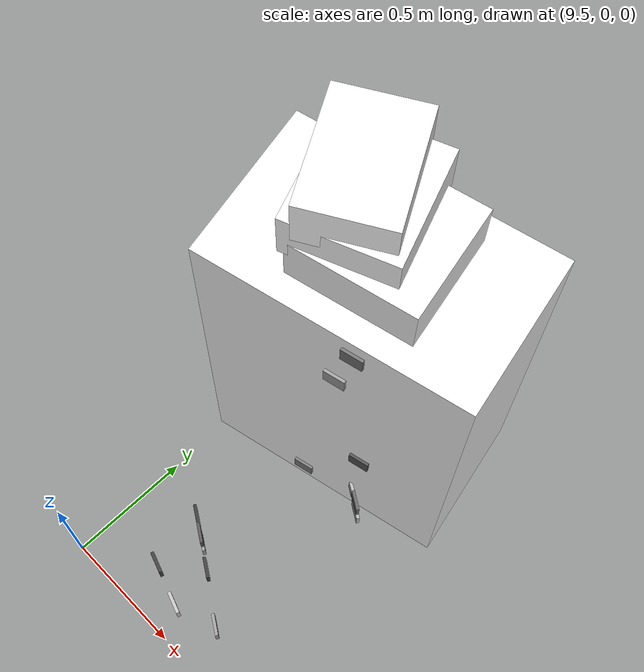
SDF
<sdf version="1.9">
 <world name="warehouse_irregular">
  <model name="panel_1_0_-1">
   <static>true</static>
   <pose>9.837975389665614 0.3515367107322513 0.2070188241436261 0 0 -0.5510470635111904</pose>
   <link name="body">
    <visual name="surface">
     <geometry><box><size>0.08 0.012 0.065</size></box></geometry>
     <material>
      <ambient>0.34408456362632023 0.34408456362632023 0.34408456362632023 1</ambient>
      <diffuse>0.34408456362632023 0.34408456362632023 0.34408456362632023 1</diffuse>
     </material>
    </visual>
   </link>
  </model>
  <model name="panel_1_0_1">
   <static>true</static>
   <pose>10.157358939300288 0.8712425392763952 0.2070188241436261 0 0 -0.5510470635111904</pose>
   <link name="body">
    <visual name="surface">
     <geometry><box><size>0.08 0.012 0.065</size></box></geometry>
     <material>
      <ambient>0.4067497742199675 0.4067497742199675 0.4067497742199675 1</ambient>
      <diffuse>0.4067497742199675 0.4067497742199675 0.4067497742199675 1</diffuse>
     </material>
    </visual>
   </link>
  </model>
  <model name="panel_1_1_-1">
   <static>true</static>
   <pose>9.959337026008004 0.2769543064650396 0.2261498469747572 0 0 -0.5510470635111904</pose>
   <link name="body">
    <visual name="surface">
     <geometry><box><size>0.08 0.012 0.065</size></box></geometry>
     <material>
      <ambient>0.2396443030011326 0.2396443030011326 0.2396443030011326 1</ambient>
      <diffuse>0.2396443030011326 0.2396443030011326 0.2396443030011326 1</diffuse>
     </material>
    </visual>
   </link>
  </model>
  <model name="panel_1_3_-1">
   <static>true</static>
   <pose>9.850888063644508 0.34360126836438853 0.14144571969186548 0 0 -0.5510470635111904</pose>
   <link name="body">
    <visual name="surface">
     <geometry><box><size>0.08 0.012 0.065</size></box></geometry>
     <material>
      <ambient>0.6022571254237787 0.6022571254237787 0.6022571254237787 1</ambient>
      <diffuse>0.6022571254237787 0.6022571254237787 0.6022571254237787 1</diffuse>
     </material>
    </visual>
   </link>
  </model>
  <model name="panel_1_3_1">
   <static>true</static>
   <pose>10.170271613279182 0.8633070969085324 0.14144571969186548 0 0 -0.5510470635111904</pose>
   <link name="body">
    <visual name="surface">
     <geometry><box><size>0.08 0.012 0.065</size></box></geometry>
     <material>
      <ambient>0.7125760743529803 0.7125760743529803 0.7125760743529803 1</ambient>
      <diffuse>0.7125760743529803 0.7125760743529803 0.7125760743529803 1</diffuse>
     </material>
    </visual>
   </link>
  </model>
  <model name="panel_1_5_-1">
   <static>true</static>
   <pose>10.176852185678621 0.14328106291192527 0.40544803613826885 0 0 -0.5510470635111904</pose>
   <link name="body">
    <visual name="surface">
     <geometry><box><size>0.08 0.012 0.065</size></box></geometry>
     <material>
      <ambient>0.6039292503948782 0.6039292503948782 0.6039292503948782 1</ambient>
      <diffuse>0.6039292503948782 0.6039292503948782 0.6039292503948782 1</diffuse>
     </material>
    </visual>
   </link>
  </model>
  <model name="panel_1_6_-1">
   <static>true</static>
   <pose>9.77111250027941 0.3926270848979941 0.19143909941481496 0 0 -0.5510470635111904</pose>
   <link name="body">
    <visual name="surface">
     <geometry><box><size>0.08 0.012 0.065</size></box></geometry>
     <material>
      <ambient>0.22205896928574773 0.22205896928574773 0.22205896928574773 1</ambient>
      <diffuse>0.22205896928574773 0.22205896928574773 0.22205896928574773 1</diffuse>
     </material>
    </visual>
   </link>
  </model>
  <model name="panel_1_6_1">
   <static>true</static>
   <pose>10.090496049914085 0.9123329134421378 0.19143909941481496 0 0 -0.5510470635111904</pose>
   <link name="body">
    <visual name="surface">
     <geometry><box><size>0.08 0.012 0.065</size></box></geometry>
     <material>
      <ambient>0.7149001705284178 0.7149001705284178 0.7149001705284178 1</ambient>
      <diffuse>0.7149001705284178 0.7149001705284178 0.7149001705284178 1</diffuse>
     </material>
    </visual>
   </link>
  </model>
  <model name="cabinet_3">
   <static>true</static>
   <pose>9.894584529694155 1.1736812645164438 0.7280525433474634 0 0 0.2332133541854401</pose>
   <link name="body">
    <visual name="surface">
     <geometry><box><size>1 0.6 1.4561050866949268</size></box></geometry>
     <material>
      <ambient>1 1 1 1</ambient>
      <diffuse>1 1 1 1</diffuse>
      <pbr>
       <metal>
        <albedo_map>model://feature_warehouse_materials/textures/storage_03.png</albedo_map>
        <roughness>.9</roughness>
        <metalness>0</metalness>
       </metal>
      </pbr>
     </material>
    </visual>
    <collision name="solid"><geometry><box><size>1 0.6 1.4561050866949268</size></box></geometry></collision>
   </link>
  </model>
  <model name="panel_3_1_1">
   <static>true</static>
   <pose>10.195961511640334 1.558755435987338 1.3927351903320062 0 0 0.2332133541854401</pose>
   <link name="body">
    <visual name="surface">
     <geometry><box><size>0.08 0.012 0.065</size></box></geometry>
     <material>
      <ambient>0.3043718479242459 0.3043718479242459 0.3043718479242459 1</ambient>
      <diffuse>0.3043718479242459 0.3043718479242459 0.3043718479242459 1</diffuse>
     </material>
    </visual>
   </link>
  </model>
  <model name="panel_3_2_-1">
   <static>true</static>
   <pose>10.116162067542716 0.9128273283782458 0.5197826735031659 0 0 0.2332133541854401</pose>
   <link name="body">
    <visual name="surface">
     <geometry><box><size>0.08 0.012 0.065</size></box></geometry>
     <material>
      <ambient>0.32651164713501457 0.32651164713501457 0.32651164713501457 1</ambient>
      <diffuse>0.32651164713501457 0.32651164713501457 0.32651164713501457 1</diffuse>
     </material>
    </visual>
   </link>
  </model>
  <model name="panel_3_2_1">
   <static>true</static>
   <pose>9.975187971103448 1.5063138944714742 0.5197826735031659 0 0 0.2332133541854401</pose>
   <link name="body">
    <visual name="surface">
     <geometry><box><size>0.08 0.012 0.065</size></box></geometry>
     <material>
      <ambient>0.28027434154274616 0.28027434154274616 0.28027434154274616 1</ambient>
      <diffuse>0.28027434154274616 0.28027434154274616 0.28027434154274616 1</diffuse>
     </material>
    </visual>
   </link>
  </model>
  <model name="panel_3_3_-1">
   <static>true</static>
   <pose>10.053846458581083 0.8980251623827157 1.3680176436622007 0 0 0.2332133541854401</pose>
   <link name="body">
    <visual name="surface">
     <geometry><box><size>0.08 0.012 0.065</size></box></geometry>
     <material>
      <ambient>0.4537055302843668 0.4537055302843668 0.4537055302843668 1</ambient>
      <diffuse>0.4537055302843668 0.4537055302843668 0.4537055302843668 1</diffuse>
     </material>
    </visual>
   </link>
  </model>
  <model name="panel_3_3_1">
   <static>true</static>
   <pose>9.912872362141814 1.491511728475944 1.3680176436622007 0 0 0.2332133541854401</pose>
   <link name="body">
    <visual name="surface">
     <geometry><box><size>0.08 0.012 0.065</size></box></geometry>
     <material>
      <ambient>0.36365154067657113 0.36365154067657113 0.36365154067657113 1</ambient>
      <diffuse>0.36365154067657113 0.36365154067657113 0.36365154067657113 1</diffuse>
     </material>
    </visual>
   </link>
  </model>
  <model name="panel_3_5_-1">
   <static>true</static>
   <pose>9.998645412000059 0.8849129571385631 1.1387104727596271 0 0 0.2332133541854401</pose>
   <link name="body">
    <visual name="surface">
     <geometry><box><size>0.08 0.012 0.065</size></box></geometry>
     <material>
      <ambient>0.6232363926108357 0.6232363926108357 0.6232363926108357 1</ambient>
      <diffuse>0.6232363926108357 0.6232363926108357 0.6232363926108357 1</diffuse>
     </material>
    </visual>
   </link>
  </model>
  <model name="panel_3_5_1">
   <static>true</static>
   <pose>9.85767131556079 1.4783995232317917 1.1387104727596271 0 0 0.2332133541854401</pose>
   <link name="body">
    <visual name="surface">
     <geometry><box><size>0.08 0.012 0.065</size></box></geometry>
     <material>
      <ambient>0.5626091967353529 0.5626091967353529 0.5626091967353529 1</ambient>
      <diffuse>0.5626091967353529 0.5626091967353529 0.5626091967353529 1</diffuse>
     </material>
    </visual>
   </link>
  </model>
  <model name="panel_3_6_-1">
   <static>true</static>
   <pose>9.882505133093769 0.857325524137684 0.09850355030783763 0 0 0.2332133541854401</pose>
   <link name="body">
    <visual name="surface">
     <geometry><box><size>0.08 0.012 0.065</size></box></geometry>
     <material>
      <ambient>0.49377753408162717 0.49377753408162717 0.49377753408162717 1</ambient>
      <diffuse>0.49377753408162717 0.49377753408162717 0.49377753408162717 1</diffuse>
     </material>
    </visual>
   </link>
  </model>
  <model name="carton_3_0">
   <static>true</static>
   <pose>9.908696530500142 1.1736812645164438 1.5561050866949269 0 0 0.2332133541854401</pose>
   <link name="body">
    <visual name="surface">
     <geometry><box><size>0.45 0.42 0.18</size></box></geometry>
     <material>
      <ambient>1 1 1 1</ambient>
      <diffuse>1 1 1 1</diffuse>
      <pbr>
       <metal>
        <albedo_map>model://feature_warehouse_materials/textures/storage_03.png</albedo_map>
        <roughness>.9</roughness>
        <metalness>0</metalness>
       </metal>
      </pbr>
     </material>
    </visual>
    <collision name="solid"><geometry><box><size>0.45 0.42 0.18</size></box></geometry></collision>
   </link>
  </model>
  <model name="carton_3_1">
   <static>true</static>
   <pose>9.818904280163363 1.1736812645164438 1.676105086694927 0 0 0.3832133541854401</pose>
   <link name="body">
    <visual name="surface">
     <geometry><box><size>0.38 0.42 0.18</size></box></geometry>
     <material>
      <ambient>1 1 1 1</ambient>
      <diffuse>1 1 1 1</diffuse>
      <pbr>
       <metal>
        <albedo_map>model://feature_warehouse_materials/textures/storage_03.png</albedo_map>
        <roughness>.9</roughness>
        <metalness>0</metalness>
       </metal>
      </pbr>
     </material>
    </visual>
    <collision name="solid"><geometry><box><size>0.38 0.42 0.18</size></box></geometry></collision>
   </link>
  </model>
  <model name="carton_3_2">
   <static>true</static>
   <pose>9.798692102227841 1.1736812645164438 1.7961050866949269 0 0 0.53321335418544</pose>
   <link name="body">
    <visual name="surface">
     <geometry><box><size>0.31 0.42 0.18</size></box></geometry>
     <material>
      <ambient>1 1 1 1</ambient>
      <diffuse>1 1 1 1</diffuse>
      <pbr>
       <metal>
        <albedo_map>model://feature_warehouse_materials/textures/storage_03.png</albedo_map>
        <roughness>.9</roughness>
        <metalness>0</metalness>
       </metal>
      </pbr>
     </material>
    </visual>
    <collision name="solid"><geometry><box><size>0.31 0.42 0.18</size></box></geometry></collision>
   </link>
  </model>
  <model name="panel_39_0_1">
   <static>true</static>
   <pose>9.879614774433803 0.13710496880589684 0.4599693397660979 0 0 -0.32025118661345464</pose>
   <link name="body">
    <visual name="surface">
     <geometry><box><size>0.08 0.012 0.065</size></box></geometry>
     <material>
      <ambient>0.23906279885981516 0.23906279885981516 0.23906279885981516 1</ambient>
      <diffuse>0.23906279885981516 0.23906279885981516 0.23906279885981516 1</diffuse>
     </material>
    </visual>
   </link>
  </model>
  <model name="panel_39_1_1">
   <static>true</static>
   <pose>10.04833522560403 0.08114576044659544 0.5397812147723929 0 0 -0.32025118661345464</pose>
   <link name="body">
    <visual name="surface">
     <geometry><box><size>0.08 0.012 0.065</size></box></geometry>
     <material>
      <ambient>0.7521626026000929 0.7521626026000929 0.7521626026000929 1</ambient>
      <diffuse>0.7521626026000929 0.7521626026000929 0.7521626026000929 1</diffuse>
     </material>
    </visual>
   </link>
  </model>
 </world>
</sdf>
